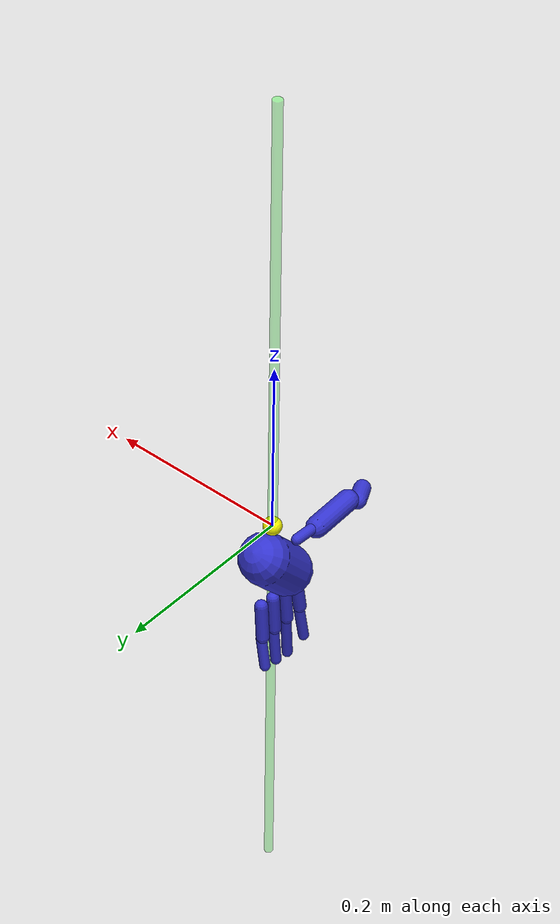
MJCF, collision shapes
<mujoco model="fourier left hand">
  <statistic center="0.3 0 0.4" extent="1"/>
  <compiler angle="radian" meshdir="./" autolimits="true"/>
  <visual>
    <headlight diffuse="0.6 0.6 0.6" ambient="0.3 0.3 0.3" specular="0 0 0"/>
    <rgba haze="0.15 0.25 0.35 1"/>
    <global azimuth="120" elevation="20"/>
  </visual>
  <default>
    <joint damping="1"/>
    <muscle ctrllimited="true" ctrlrange="0 100"/>
    <motor ctrllimited="true" ctrlrange="-3 3" gear="1"/>
    <position ctrllimited="true" kp="10"/>
  </default>
  <asset>
    <mesh name="L_hand_base_link_vis" file="meshes/fourier_hands/L_hand_base_link.STL"/>
    <mesh name="L_hand_base_link_col" file="meshes/fourier_hands/L_hand_base_link.STL"/>
    <mesh name="L_thumb_proximal_base_link_vis" file="meshes/fourier_hands/L_thumb_proximal_base_link.STL"/>
    <mesh name="L_thumb_proximal_base_link_col" file="meshes/fourier_hands/L_thumb_proximal_base_link.STL"/>
    <mesh name="L_thumb_proximal_link_vis" file="meshes/fourier_hands/L_thumb_proximal_link.STL"/>
    <mesh name="L_thumb_proximal_link_col" file="meshes/fourier_hands/L_thumb_proximal_link.STL"/>
    <mesh name="L_thumb_distal_link_vis" file="meshes/fourier_hands/L_thumb_distal_link.STL"/>
    <mesh name="L_thumb_distal_link_col" file="meshes/fourier_hands/L_thumb_distal_link.STL"/>
    <mesh name="L_index_proximal_link_vis" file="meshes/fourier_hands/L_index_proximal_link.STL"/>
    <mesh name="L_index_proximal_link_col" file="meshes/fourier_hands/L_index_proximal_link.STL"/>
    <mesh name="L_index_intermediate_link_vis" file="meshes/fourier_hands/L_index_intermediate_link.STL"/>
    <mesh name="L_index_intermediate_link_col" file="meshes/fourier_hands/L_index_intermediate_link.STL"/>
    <mesh name="L_middle_proximal_link_vis" file="meshes/fourier_hands/L_middle_proximal_link.STL"/>
    <mesh name="L_middle_proximal_link_col" file="meshes/fourier_hands/L_middle_proximal_link.STL"/>
    <mesh name="L_middle_intermediate_link_vis" file="meshes/fourier_hands/L_middle_intermediate_link.STL"/>
    <mesh name="L_middle_intermediate_link_col" file="meshes/fourier_hands/L_middle_intermediate_link.STL"/>
    <mesh name="L_ring_proximal_link_vis" file="meshes/fourier_hands/L_ring_proximal_link.STL"/>
    <mesh name="L_ring_proximal_link_col" file="meshes/fourier_hands/L_ring_proximal_link.STL"/>
    <mesh name="L_ring_intermediate_link_vis" file="meshes/fourier_hands/L_ring_intermediate_link.STL"/>
    <mesh name="L_ring_intermediate_link_col" file="meshes/fourier_hands/L_ring_intermediate_link.STL"/>
    <mesh name="L_pinky_proximal_link_vis" file="meshes/fourier_hands/L_pinky_proximal_link.STL"/>
    <mesh name="L_pinky_proximal_link_col" file="meshes/fourier_hands/L_pinky_proximal_link.STL"/>
    <mesh name="L_pinky_intermediate_link_vis" file="meshes/fourier_hands/L_pinky_intermediate_link.STL"/>
    <mesh name="L_pinky_intermediate_link_col" file="meshes/fourier_hands/L_pinky_intermediate_link.STL"/>
    <material name="site_left_hand" rgba="0.1882 0.1882 0.1882 0"/>
    <material name="l_base_material" rgba="0 0 0 1"/>
    <material name="l_thumb_material" rgba="0 0 0 1"/>
    <material name="l_index_material" rgba="0 0 0 1"/>
    <material name="l_middle_material" rgba="0 0 0 1"/>
    <material name="l_ring_material" rgba="0 0 0 1"/>
    <material name="l_pinky_material" rgba="0 0 0 1"/>
    <material name="l_thumb_distal_material" rgba="0 0 0 1"/>
  </asset>
  <worldbody>
    <body name="left_hand" pos="0 0 0" quat="0.7071068 0.7071068 0 0">
      <site name="ft_frame" pos="0 0 0" size="0.01 0.01 0.01" rgba="1 0 0 0" type="sphere" group="1"/>
      <inertial diaginertia="0 0 0" mass="0" pos="0 0 0"/>
      <body name="eef" pos="0 0 0" quat="0.707 0. -0.707 0.">
        <site name="grip_site" pos="0 0 0" size="0.01 0.01 0.01" rgba="1 1 0 1" type="sphere" group="2"/>
        <site name="ee_x" pos="0.1 0 0" size="0.005 .1" quat="0.707105  0 0.707108 0 " rgba="1 0 0 0" type="cylinder" group="1"/>
        <site name="ee_y" pos="0 0.1 0" size="0.005 .1" quat="0.707105 0.707108 0 0" rgba="0 1 0 0" type="cylinder" group="1"/>
        <site name="ee_z" pos="0 0 0.1" size="0.005 .1" quat="1 0 0 0" rgba="0 0 1 0" type="cylinder" group="1"/>
        <site name="grip_site_cylinder" pos="0 0 0" quat="-0.5 -0.5 -0.5 0.5" size="0.005 0.5" rgba="0 1 0 0.3" type="cylinder" group="1"/>
      </body>
      <body quat="0.5 -0.5 -0.5 -0.5">
        <body name="l_palm" pos="0 0 0">
          <geom name="l_palm_vis" type="mesh" material="l_base_material" mesh="L_hand_base_link_vis" group="1" contype="0" conaffinity="0"/>
          <geom name="l_palm_col" type="capsule" mass="0.1" pos="0.000759 -0.004140 -0.050984" quat="0.936901 -0.010170 -0.349447 0.000000" size="0.027676 0.024627" rgba="0.2 0.2 0.8 0.5"/>
          <body name="l_thumb" pos="0. 0. 0.">
            <body name="L_thumb_proximal_base_link" pos="0.022 -0.015498 -0.025093" quat="1 0 -6.105e-06 0">
              <joint name="L_thumb_proximal_yaw_joint" pos="0 0 0" axis="0 0 -1" range="0 1.74" actuatorfrcrange="-10 10" damping="1"/>
              <geom name="L_thumb_proximal_base_link_vis" type="mesh" material="l_thumb_material" mesh="L_thumb_proximal_base_link_vis" group="1" contype="0" conaffinity="0"/>
              <geom name="L_thumb_proximal_base_link_col" type="capsule" mass="0.1" pos="0.010065 0.000143 0.000789" quat="0.702587 0.029384 0.710991 0.000000" size="0.005891 0.011393" rgba="0.2 0.2 0.8 0.5"/>
              <body name="L_thumb_proximal_link" pos="0.02175 0 0" quat="0.707141 -0.707073 0 0">
                <site name="site_L_thumb_proximal_link" size="0.01" material="site_left_hand"/>
                <joint name="L_thumb_proximal_pitch_joint" pos="0 0 0" axis="0 0 1" range="0 1.22" actuatorfrcrange="-10 10" damping="1"/>
                <geom name="L_thumb_proximal_link_vis" type="mesh" material="l_thumb_material" mesh="L_thumb_proximal_link_vis" group="1" contype="0" conaffinity="0"/>
                <geom name="L_thumb_proximal_link_col" type="capsule" mass="0.1" pos="0.031869 0.001134 0.000005" quat="0.706290 -0.039435 -0.706824 0.000000" size="0.011669 0.024754" rgba="0.2 0.2 0.8 0.5"/>
                <body name="L_thumb_distal_link" pos="0.061549 0.0074616 0" quat="1 0 0 6.105e-06">
                  <site name="site_L_thumb_distal_link" size="0.01" material="site_left_hand"/>
                  <joint name="L_thumb_distal_joint" pos="0 0 0" axis="0 0 1" range="0 1.23" actuatorfrcrange="-10 10" damping="1"/>
                  <geom name="L_thumb_distal_link_vis" type="mesh" material="l_thumb_material" mesh="L_thumb_distal_link_vis" group="1" contype="0" conaffinity="0"/>
                  <geom name="L_thumb_distal_link_col" type="capsule" mass="0.1" pos="0.014998 -0.002581 -0.000041" quat="0.852193 -0.052084 0.520630 0.000000" size="0.009267 0.010866" rgba="0.2 0.2 0.8 0.5"/>
                </body>
              </body>
            </body>
          </body>
          <body name="l_index" pos="0 0 0">
            <body name="L_index_proximal_link" pos="0.026869 -0.012293 -0.095989" quat="0.725387 2.48047e-05 0.688341 2.35323e-05">
              <site name="site_L_index_proximal_link" size="0.01" material="site_left_hand"/>
              <joint name="L_index_proximal_joint" pos="0 0 0" axis="0 0 -1" range="0 1.57" actuatorfrcrange="-10 10" damping="1"/>
              <geom name="L_index_proximal_link_vis" type="mesh" material="l_index_material" mesh="L_index_proximal_link_vis" group="1" contype="0" conaffinity="0"/>
              <geom name="L_index_proximal_link_col" type="capsule" mass="0.1" pos="0.009046 0.000225 0.000001" quat="0.706734 0.085095 0.702343 0.000000" size="0.006980 0.019094" rgba="0.2 0.2 0.8 0.5"/>
              <body name="L_index_intermediate_link" pos="0.031532 -0.0054551 0" quat="1 0 0 -3.4128e-05">
                <site name="site_L_index_intermediate_link" size="0.01" material="site_left_hand"/>
                <joint name="L_index_intermediate_joint" pos="0 0 0" axis="0 0 -1" range="0 1.74" actuatorfrcrange="-10 10" damping="1"/>
                <geom name="L_index_intermediate_link_vis" type="mesh" material="l_index_material" mesh="L_index_intermediate_link_vis" group="1" contype="0" conaffinity="0"/>
                <geom name="L_index_intermediate_link_col" type="capsule" mass="0.1" pos="0.018658 0.002048 -0.000008" quat="0.707359 -0.100516 -0.699671 0.000000" size="0.005676 0.019517" rgba="0.2 0.2 0.8 0.5"/>
              </body>
            </body>
          </body>
          <body name="l_middle" pos="0 0 0">
            <body name="L_middle_proximal_link" pos="0.0085012 -0.012293 -0.097993" quat="0.707113 3.35258e-05 0.707101 3.35258e-05">
              <site name="site_L_middle_proximal_link" size="0.01" material="site_left_hand"/>
              <joint name="L_middle_proximal_joint" pos="0 0 0" axis="0 0 -1" range="0 1.57" actuatorfrcrange="-10 10" damping="1"/>
              <geom name="L_middle_proximal_link_vis" type="mesh" material="l_middle_material" mesh="L_middle_proximal_link_vis" group="1" contype="0" conaffinity="0"/>
              <geom name="L_middle_proximal_link_col" type="capsule" mass="0.1" pos="0.009044 0.000483 0.000001" quat="0.706733 0.068643 0.704142 0.000000" size="0.006960 0.019112" rgba="0.2 0.2 0.8 0.5"/>
              <body name="L_middle_intermediate_link" pos="0.031662 -0.0046408 0" quat="1 0 0 -3.4175e-05">
                <site name="site_L_middle_intermediate_link" size="0.01" material="site_left_hand"/>
                <joint name="L_middle_intermediate_joint" pos="0 0 0" axis="0 0 -1" range="0 1.74" actuatorfrcrange="-10 10" damping="1"/>
                <geom name="L_middle_intermediate_link_vis" type="mesh" material="l_middle_material" mesh="L_middle_intermediate_link_vis" group="1" contype="0" conaffinity="0"/>
                <geom name="L_middle_intermediate_link_col" type="capsule" mass="0.1" pos="0.022614 0.003174 -0.000010" quat="0.707835 -0.042525 -0.705097 0.000000" size="0.005645 0.023542" rgba="0.2 0.2 0.8 0.5"/>
              </body>
            </body>
          </body>
          <body name="l_ring" pos="0 0 0">
            <body name="L_ring_proximal_link" pos="-0.00996 -0.012293 -0.097938" quat="0.688341 2.39435e-05 0.725387 2.39435e-05">
              <site name="site_L_ring_proximal_link" size="0.01" material="site_left_hand"/>
              <joint name="L_ring_proximal_joint" pos="0 0 0" axis="0 0 -1" range="0 1.57" actuatorfrcrange="-10 10" damping="1"/>
              <geom name="L_ring_proximal_link_vis" type="mesh" material="l_ring_material" mesh="L_ring_proximal_link_vis" group="1" contype="0" conaffinity="0"/>
              <geom name="L_ring_proximal_link_col" type="capsule" mass="0.1" pos="0.009046 0.000225 0.000001" quat="0.706734 0.085095 0.702343 0.000000" size="0.006980 0.019094" rgba="0.2 0.2 0.8 0.5"/>
              <body name="L_ring_intermediate_link" pos="0.031532 -0.0054551 0" quat="1 0 0 -3.4128e-05">
                <site name="site_L_ring_intermediate_link" size="0.01" material="site_left_hand"/>
                <joint name="L_ring_intermediate_joint" pos="0 0 0" axis="0 0 -1" range="0 1.74" actuatorfrcrange="-10 10" damping="1"/>
                <geom name="L_ring_intermediate_link_vis" type="mesh" material="l_ring_material" mesh="L_ring_intermediate_link_vis" group="1" contype="0" conaffinity="0"/>
                <geom name="L_ring_intermediate_link_col" type="capsule" mass="0.1" pos="0.018658 0.002048 -0.000008" quat="0.707359 -0.100516 -0.699671 0.000000" size="0.005676 0.019517" rgba="0.2 0.2 0.8 0.5"/>
              </body>
            </body>
          </body>
          <body name="l_pinky" pos="0 0 0">
            <body name="L_pinky_proximal_link" pos="-0.028227 -0.012293 -0.096013" quat="0.669139 2.56274e-05 0.743137 2.56274e-05">
              <site name="site_L_pinky_proximal_link" size="0.01" material="site_left_hand"/>
              <joint name="L_pinky_proximal_joint" pos="0 0 0" axis="0 0 -1" range="0 1.57" actuatorfrcrange="-10 10" damping="1"/>
              <geom name="L_pinky_proximal_link_vis" type="mesh" material="l_pinky_material" mesh="L_pinky_proximal_link_vis" group="1" contype="0" conaffinity="0"/>
              <geom name="L_pinky_proximal_link_col" type="capsule" mass="0.1" pos="0.009047 -0.000099 0.000001" quat="0.706760 0.106531 0.699386 0.000000" size="0.007000 0.019070" rgba="0.2 0.2 0.8 0.5"/>
              <body name="L_pinky_intermediate_link" pos="0.031338 -0.0064763 0" quat="1 0 0 -3.3988e-05">
                <site name="site_L_pinky_intermediate_link" size="0.01" material="site_left_hand"/>
                <joint name="L_pinky_intermediate_joint" pos="0 0 0" axis="0 0 -1" range="0 1.74" actuatorfrcrange="-10 10" damping="1"/>
                <geom name="L_pinky_intermediate_link_vis" type="mesh" material="l_pinky_material" mesh="L_pinky_intermediate_link_vis" group="1" contype="0" conaffinity="0"/>
                <geom name="L_pinky_intermediate_link_col" type="capsule" mass="0.1" pos="0.015708 0.001139 -0.000005" quat="0.708053 0.175839 0.683916 0.000000" size="0.005665 0.016545" rgba="0.2 0.2 0.8 0.5"/>
              </body>
            </body>
          </body>
        </body>
      </body>
    </body>
  </worldbody>
  <actuator>
    <position joint="L_pinky_intermediate_joint" name="L_pinky_intermediate_joint_drive" ctrlrange="0 1.74" kp="2" forcelimited="true" forcerange="-20 20"/>
    <position joint="L_pinky_proximal_joint" name="L_pinky_proximal_joint_drive" ctrlrange="0 1.57" kp="2" forcelimited="true" forcerange="-20 20"/>
    <position joint="L_ring_intermediate_joint" name="L_ring_intermediate_joint_drive" ctrlrange="0 1.74" kp="2" forcelimited="true" forcerange="-20 20"/>
    <position joint="L_ring_proximal_joint" name="L_ring_proximal_joint_drive" ctrlrange="0 1.57" kp="2" forcelimited="true" forcerange="-20 20"/>
    <position joint="L_middle_intermediate_joint" name="L_middle_intermediate_joint_drive" ctrlrange="0 1.74" kp="2" forcelimited="true" forcerange="-20 20"/>
    <position joint="L_middle_proximal_joint" name="L_middle_proximal_joint_drive" ctrlrange="0 1.57" kp="2" forcelimited="true" forcerange="-20 20"/>
    <position joint="L_index_intermediate_joint" name="L_index_intermediate_joint_drive" ctrlrange="0 1.74" kp="2" forcelimited="true" forcerange="-20 20"/>
    <position joint="L_index_proximal_joint" name="L_index_proximal_joint_drive" ctrlrange="0 1.57" kp="2" forcelimited="true" forcerange="-20 20"/>
    <position joint="L_thumb_distal_joint" name="L_thumb_distal_joint_drive" ctrlrange="0 1.23" kp="2" forcelimited="true" forcerange="-20 20"/>
    <position joint="L_thumb_proximal_pitch_joint" name="L_thumb_proximal_pitch_joint_drive" ctrlrange="0 1.22" kp="2" forcelimited="true" forcerange="-20 20"/>
    <position joint="L_thumb_proximal_yaw_joint" name="L_thumb_proximal_yaw_joint_drive" ctrlrange="0 1.74" kp="4" forcelimited="true" forcerange="-20 20"/>
  </actuator>
  <sensor>
    <force name="force_ee" site="ft_frame"/>
    <torque name="torque_ee" site="ft_frame"/>
  </sensor>
</mujoco>
